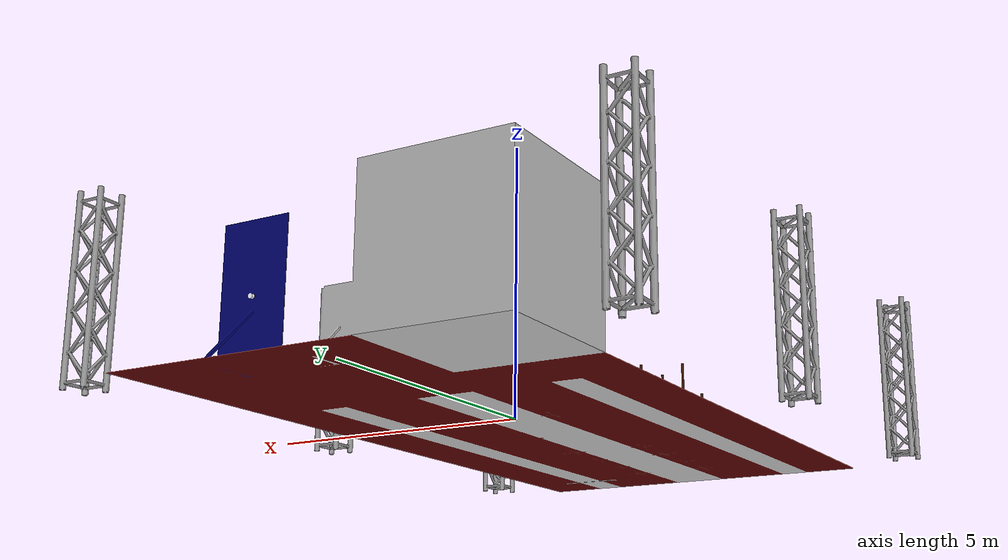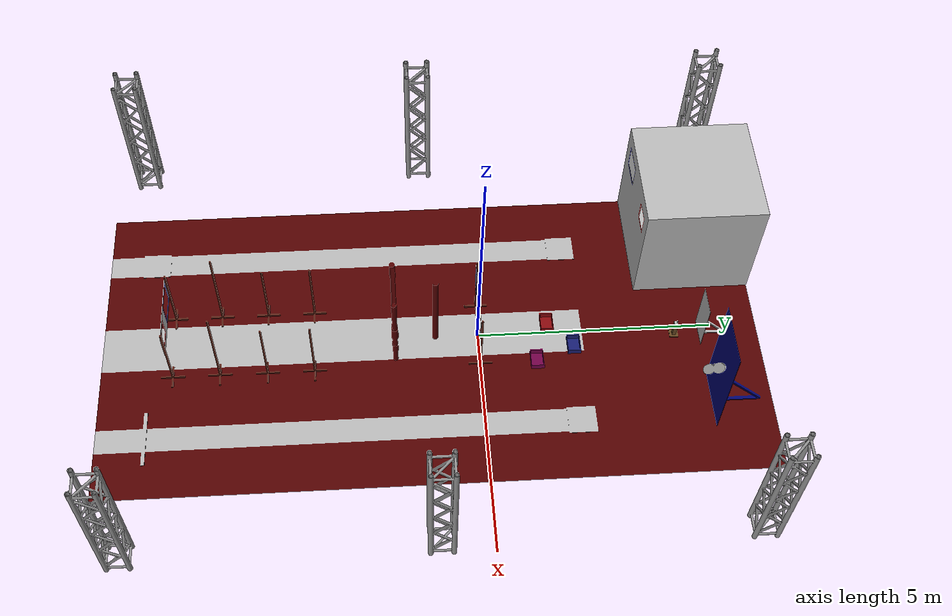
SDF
<?xml version="1.0"?>
<sdf version="1.9">
  <model name="imav2026_indoor_static">
    <static>true</static>

    <link name="static_scene_link">
      <pose>0 0 0 0 0 0</pose>

      <visual name="basic_world_visual">
        <pose>0 0 0 0 0 0</pose>
        <geometry>
          <mesh>
            <uri>model://imav2026_indoor_static/meshes/basic_world_v9.dae</uri>
          </mesh>
        </geometry>
      </visual>

      <collision name="basic_world_collision">
        <pose>0 0 0 0 0 0</pose>
        <geometry>
          <mesh>
            <uri>model://imav2026_indoor_static/meshes/basic_world_v9.dae</uri>
          </mesh>
        </geometry>
      </collision>
    </link>
  </model>
</sdf>
